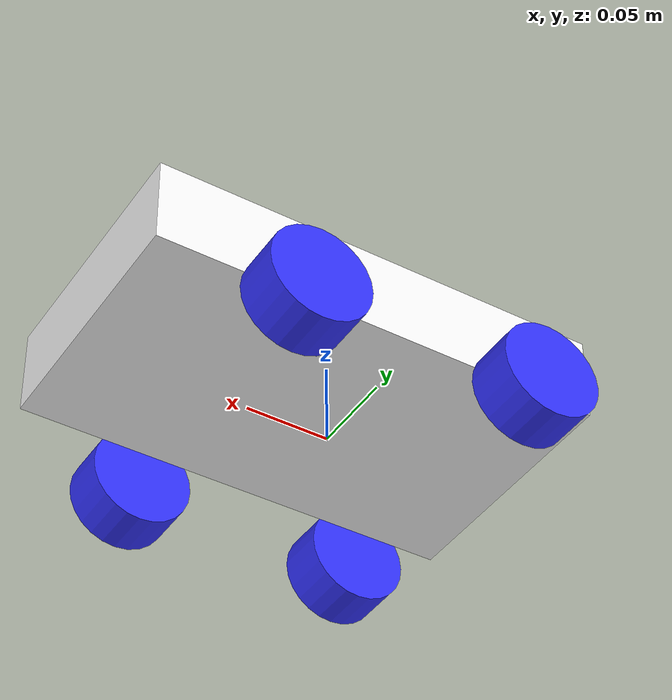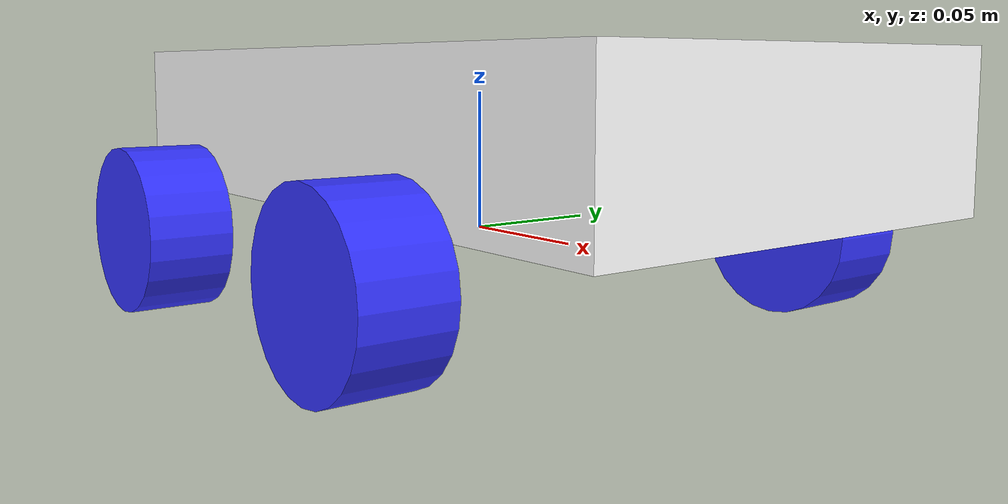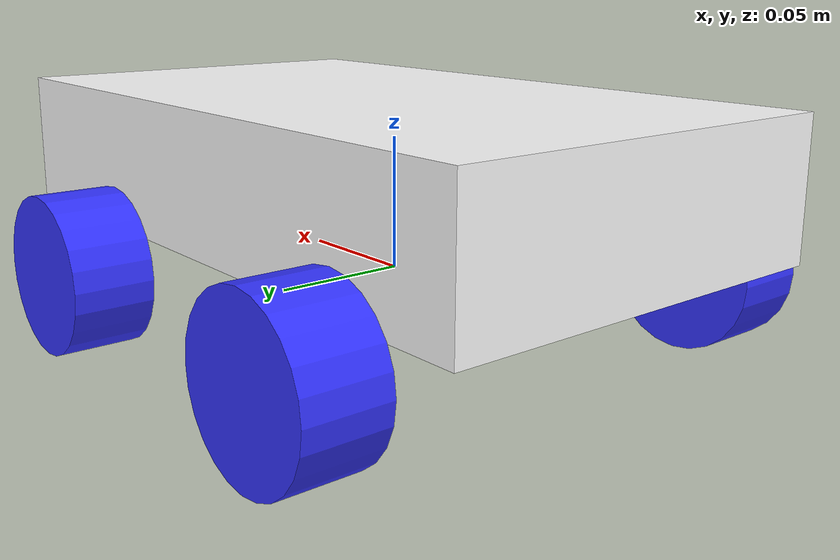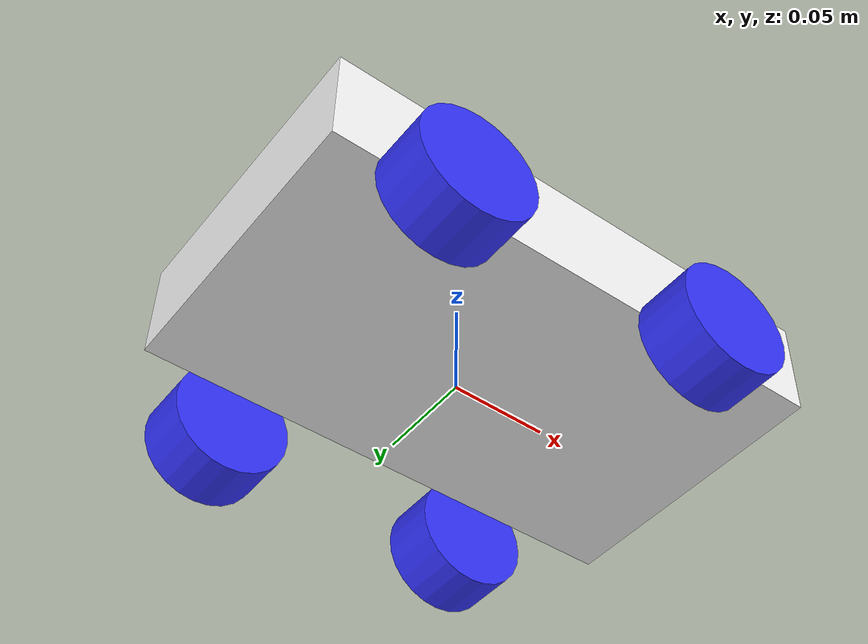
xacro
<?xml version="1.0"?>
<robot xmlns:xacro="http://www.ros.org/wiki/xacro" >

    <xacro:include filename="inertial_macros.xacro"/>

    <material name="white">
        <color rgba="1 1 1 1" />
    </material>

    <material name="orange">
        <color rgba="1 0.3 0.1 1"/>
    </material>

    <material name="blue">
        <color rgba="0.2 0.2 1 1"/>
    </material>

    <material name="black">
        <color rgba="0 0 0 1"/>
    </material>

    <!-- BASE LINK -->

    <link name="base_link">

    </link>

    <!-- CHASSIS LINK -->

    <joint name="chassis_joint" type="fixed">
        <parent link="base_link"/>
        <child link="chassis"/>
        <origin xyz="0.01347 0 0.03935" rpy="0 0 0"/>
    </joint>

    <link name="chassis">
        <visual>
            <geometry>
                <box size="0.268 0.156 0.052"/>
            </geometry>
            <material name="white"/>
        </visual>
         <collision>
            <origin xyz="0 0 0"/>
            <geometry>
                <box size=".268 0.156 0.052"/>
            </geometry>
        </collision>
       <xacro:inertial_box mass="0.5" x="0.268" y="0.156" z="0.052">
            <origin xyz="0.01347 0 0.03935" rpy="0 0 0"/>
        </xacro:inertial_box>
    </link>

    <gazebo reference="chassis">
        <material>Gazebo/White</material>
    </gazebo>

    <!-- LEFT REAR WHEEL LINK -->

    <joint name="left_rear_wheel_joint" type="continuous">
        <parent link="base_link"/>
        <child link="left_rear_wheel"/>
        <origin xyz="-0.0704 -0.095 0" rpy="-${pi/2} 0 0"/>
        <axis xyz="0 0 1"/>
    </joint>

    <link name="left_rear_wheel">
        <visual>
            <geometry>
                <cylinder radius="0.03" length="0.03"/>
            </geometry>
            <material name="blue"/>
        </visual>
        <collision>
            <geometry>
                <cylinder radius="0.03" length="0.03"/>
            </geometry>
        </collision>
        <xacro:inertial_cylinder mass="0.5" length="0.03" radius="0.03">
            <origin xyz="-0.0704 -0.095 0" rpy="0 0 0"/>
        </xacro:inertial_cylinder>
    </link>

    <gazebo reference="left_rear_wheel">
        <material>Gazebo/Blue</material>
    </gazebo>

    <!-- RIGHT REAR WHEEL LINK -->

    <joint name="right_rear_wheel_joint" type="continuous">
        <parent link="base_link"/>
        <child link="right_rear_wheel"/>
        <origin xyz="-0.0704 0.095 0" rpy="${pi/2} 0 0" />
        <axis xyz="0 0 -1"/>
    </joint>

    <link name="right_rear_wheel">
        <visual>
            <geometry>
                <cylinder radius="0.03" length="0.03"/>
            </geometry>
            <material name="blue"/>
        </visual>
        <collision>
            <geometry>
                <cylinder radius="0.03" length="0.03"/>
            </geometry>
        </collision>
        <xacro:inertial_cylinder mass="0.5" length="0.03" radius="0.03">
            <origin xyz="-0.0704 0.095 0" rpy="0 0 0"/>
        </xacro:inertial_cylinder>
    </link>

    <gazebo reference="right_rear_wheel">
        <material>Gazebo/Blue</material>
    </gazebo>

   <!-- RIGHT FRONT WHEEL LINK -->

    <joint name="right_front_wheel_joint" type="continuous">
        <parent link="base_link"/>
        <child link="right_front_wheel"/>
        <origin xyz="0.0704 0.095 0" rpy="${pi/2} 0 0" />
        <axis xyz="0 0 -1"/>
    </joint>

    <link name="right_front_wheel">
        <visual>
            <geometry>
                <cylinder radius="0.03" length="0.03"/>
            </geometry>
            <material name="blue"/>
        </visual>
        <collision>
            <geometry>
                <cylinder radius="0.03" length="0.03"/>
            </geometry>
        </collision>
        <xacro:inertial_cylinder mass="0.5" length="0.03" radius="0.03">
            <origin xyz="0.0704 0.095 0" rpy="0 0 0"/>
        </xacro:inertial_cylinder>
    </link>

    <gazebo reference="right_front_wheel">
        <material>Gazebo/Blue</material>
    </gazebo>

   <!-- LEFT FRONT WHEEL LINK -->

    <joint name="left_front_wheel_joint" type="continuous">
        <parent link="base_link"/>
        <child link="left_front_wheel"/>
        <origin xyz="0.0704 -0.095 0" rpy="-${pi/2} 0 0" />
        <axis xyz="0 0 1"/>
    </joint>

    <link name="left_front_wheel">
        <visual>
            <geometry>
                <cylinder radius="0.03" length="0.03"/>
            </geometry>
            <material name="blue"/>
        </visual>
        <collision>
            <geometry>
                <cylinder radius="0.03" length="0.03"/>
            </geometry>
        </collision>
        <xacro:inertial_cylinder mass="0.5" length="0.03" radius="0.03">
            <origin xyz="0.0704 -0.095 0" rpy="0 0 0"/>
        </xacro:inertial_cylinder>
    </link>

    <gazebo reference="left_front_wheel">
        <material>Gazebo/Blue</material>
    </gazebo>

</robot>
